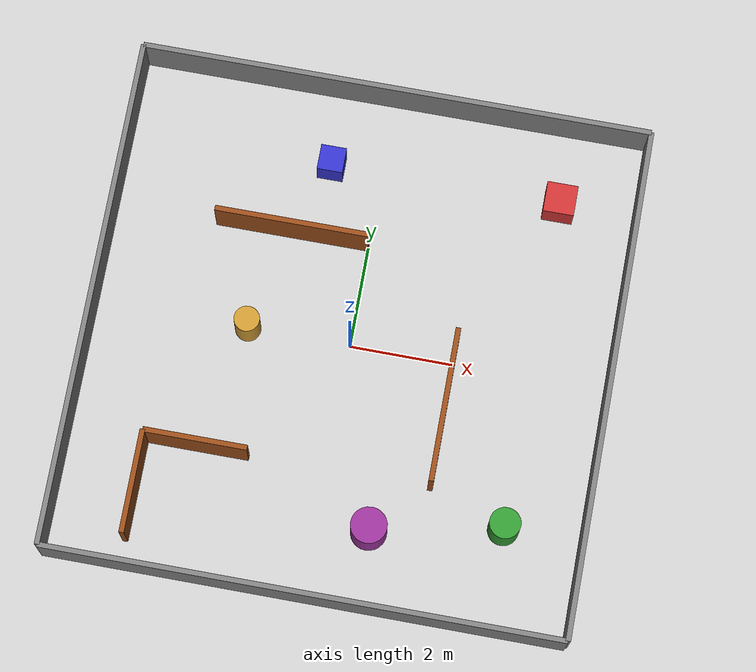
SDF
<?xml version="1.0" ?>
<sdf version="1.8">
  <world name="drobot_world">

    <!-- Physics -->
    <physics name="1ms" type="ignored">
      <max_step_size>0.001</max_step_size>
      <real_time_factor>1.0</real_time_factor>
    </physics>

    <!-- Plugins -->
    <plugin filename="gz-sim-physics-system" name="gz::sim::systems::Physics"/>
    <plugin filename="gz-sim-user-commands-system" name="gz::sim::systems::UserCommands"/>
    <plugin filename="gz-sim-scene-broadcaster-system" name="gz::sim::systems::SceneBroadcaster"/>
    <plugin filename="gz-sim-sensors-system" name="gz::sim::systems::Sensors">
      <render_engine>ogre2</render_engine>
    </plugin>
    <plugin filename="gz-sim-imu-system" name="gz::sim::systems::Imu"/>
    <plugin filename="gz-sim-contact-system" name="gz::sim::systems::Contact"/>

    <!-- Lighting -->
    <light type="directional" name="sun">
      <cast_shadows>true</cast_shadows>
      <pose>0 0 10 0 0 0</pose>
      <diffuse>0.8 0.8 0.8 1</diffuse>
      <specular>0.2 0.2 0.2 1</specular>
      <attenuation>
        <range>1000</range>
        <constant>0.9</constant>
        <linear>0.01</linear>
        <quadratic>0.001</quadratic>
      </attenuation>
      <direction>-0.5 0.1 -0.9</direction>
    </light>

    <!-- Ground Plane -->
    <model name="ground_plane">
      <static>true</static>
      <link name="link">
        <collision name="collision">
          <geometry>
            <plane>
              <normal>0 0 1</normal>
              <size>100 100</size>
            </plane>
          </geometry>
        </collision>
        <visual name="visual">
          <geometry>
            <plane>
              <normal>0 0 1</normal>
              <size>100 100</size>
            </plane>
          </geometry>
          <material>
            <ambient>0.8 0.8 0.8 1</ambient>
            <diffuse>0.8 0.8 0.8 1</diffuse>
            <specular>0.8 0.8 0.8 1</specular>
          </material>
        </visual>
      </link>
    </model>

    <!-- 외벽 (10m x 10m 방) - 확대! -->

    <!-- 북쪽 벽 -->
    <model name="wall_north">
      <static>true</static>
      <pose>0 5 0.5 0 0 0</pose>
      <link name="link">
        <collision name="collision">
          <geometry><box><size>10 0.1 1.0</size></box></geometry>
        </collision>
        <visual name="visual">
          <geometry><box><size>10 0.1 1.0</size></box></geometry>
          <material>
            <ambient>0.5 0.5 0.5 1</ambient>
            <diffuse>0.5 0.5 0.5 1</diffuse>
          </material>
        </visual>
      </link>
    </model>

    <!-- 남쪽 벽 -->
    <model name="wall_south">
      <static>true</static>
      <pose>0 -5 0.5 0 0 0</pose>
      <link name="link">
        <collision name="collision">
          <geometry><box><size>10 0.1 1.0</size></box></geometry>
        </collision>
        <visual name="visual">
          <geometry><box><size>10 0.1 1.0</size></box></geometry>
          <material>
            <ambient>0.5 0.5 0.5 1</ambient>
            <diffuse>0.5 0.5 0.5 1</diffuse>
          </material>
        </visual>
      </link>
    </model>

    <!-- 동쪽 벽 -->
    <model name="wall_east">
      <static>true</static>
      <pose>5 0 0.5 0 0 0</pose>
      <link name="link">
        <collision name="collision">
          <geometry><box><size>0.1 10 1.0</size></box></geometry>
        </collision>
        <visual name="visual">
          <geometry><box><size>0.1 10 1.0</size></box></geometry>
          <material>
            <ambient>0.5 0.5 0.5 1</ambient>
            <diffuse>0.5 0.5 0.5 1</diffuse>
          </material>
        </visual>
      </link>
    </model>

    <!-- 서쪽 벽 -->
    <model name="wall_west">
      <static>true</static>
      <pose>-5 0 0.5 0 0 0</pose>
      <link name="link">
        <collision name="collision">
          <geometry><box><size>0.1 10 1.0</size></box></geometry>
        </collision>
        <visual name="visual">
          <geometry><box><size>0.1 10 1.0</size></box></geometry>
          <material>
            <ambient>0.5 0.5 0.5 1</ambient>
            <diffuse>0.5 0.5 0.5 1</diffuse>
          </material>
        </visual>
      </link>
    </model>

    <!-- 내부 벽 (넓은 통로 확보) -->

    <!-- 내부 벽 1: 수평 (위쪽) -->
    <model name="inner_wall_1">
      <static>true</static>
      <pose>-1.5 2 0.5 0 0 0</pose>
      <link name="link">
        <collision name="collision">
          <geometry><box><size>3 0.1 1.0</size></box></geometry>
        </collision>
        <visual name="visual">
          <geometry><box><size>3 0.1 1.0</size></box></geometry>
          <material>
            <ambient>0.6 0.3 0.1 1</ambient>
            <diffuse>0.6 0.3 0.1 1</diffuse>
          </material>
        </visual>
      </link>
    </model>

    <!-- 내부 벽 2: 수직 (오른쪽) -->
    <model name="inner_wall_2">
      <static>true</static>
      <pose>2 -1 0.5 0 0 0</pose>
      <link name="link">
        <collision name="collision">
          <geometry><box><size>0.1 3 1.0</size></box></geometry>
        </collision>
        <visual name="visual">
          <geometry><box><size>0.1 3 1.0</size></box></geometry>
          <material>
            <ambient>0.6 0.3 0.1 1</ambient>
            <diffuse>0.6 0.3 0.1 1</diffuse>
          </material>
        </visual>
      </link>
    </model>

    <!-- 내부 벽 3: L자 (왼쪽 아래) -->
    <model name="inner_wall_3">
      <static>true</static>
      <pose>-2.5 -2.5 0.5 0 0 0</pose>
      <link name="link">
        <collision name="collision">
          <geometry><box><size>2 0.1 1.0</size></box></geometry>
        </collision>
        <visual name="visual">
          <geometry><box><size>2 0.1 1.0</size></box></geometry>
          <material>
            <ambient>0.6 0.3 0.1 1</ambient>
            <diffuse>0.6 0.3 0.1 1</diffuse>
          </material>
        </visual>
      </link>
    </model>

    <!-- 내부 벽 4: L자 연결 -->
    <model name="inner_wall_4">
      <static>true</static>
      <pose>-3.5 -3.5 0.5 0 0 0</pose>
      <link name="link">
        <collision name="collision">
          <geometry><box><size>0.1 2 1.0</size></box></geometry>
        </collision>
        <visual name="visual">
          <geometry><box><size>0.1 2 1.0</size></box></geometry>
          <material>
            <ambient>0.6 0.3 0.1 1</ambient>
            <diffuse>0.6 0.3 0.1 1</diffuse>
          </material>
        </visual>
      </link>
    </model>

    <!-- 장애물 (넓게 배치) -->

    <!-- 박스 장애물 1 -->
    <model name="box_1">
      <static>true</static>
      <pose>3.5 3.5 0.3 0 0 0</pose>
      <link name="link">
        <collision name="collision">
          <geometry><box><size>0.6 0.6 0.6</size></box></geometry>
        </collision>
        <visual name="visual">
          <geometry><box><size>0.6 0.6 0.6</size></box></geometry>
          <material>
            <ambient>0.8 0.2 0.2 1</ambient>
            <diffuse>0.8 0.2 0.2 1</diffuse>
          </material>
        </visual>
      </link>
    </model>

    <!-- 박스 장애물 2 -->
    <model name="box_2">
      <static>true</static>
      <pose>-1 3.5 0.3 0 0 0</pose>
      <link name="link">
        <collision name="collision">
          <geometry><box><size>0.5 0.5 0.6</size></box></geometry>
        </collision>
        <visual name="visual">
          <geometry><box><size>0.5 0.5 0.6</size></box></geometry>
          <material>
            <ambient>0.2 0.2 0.8 1</ambient>
            <diffuse>0.2 0.2 0.8 1</diffuse>
          </material>
        </visual>
      </link>
    </model>

    <!-- 실린더 장애물 1 -->
    <model name="cylinder_1">
      <static>true</static>
      <pose>3.5 -3 0.4 0 0 0</pose>
      <link name="link">
        <collision name="collision">
          <geometry>
            <cylinder>
              <radius>0.3</radius>
              <length>0.8</length>
            </cylinder>
          </geometry>
        </collision>
        <visual name="visual">
          <geometry>
            <cylinder>
              <radius>0.3</radius>
              <length>0.8</length>
            </cylinder>
          </geometry>
          <material>
            <ambient>0.2 0.6 0.2 1</ambient>
            <diffuse>0.2 0.6 0.2 1</diffuse>
          </material>
        </visual>
      </link>
    </model>

    <!-- 실린더 장애물 2 -->
    <model name="cylinder_2">
      <static>true</static>
      <pose>-2 0 0.4 0 0 0</pose>
      <link name="link">
        <collision name="collision">
          <geometry>
            <cylinder>
              <radius>0.25</radius>
              <length>0.8</length>
            </cylinder>
          </geometry>
        </collision>
        <visual name="visual">
          <geometry>
            <cylinder>
              <radius>0.25</radius>
              <length>0.8</length>
            </cylinder>
          </geometry>
          <material>
            <ambient>0.8 0.6 0.2 1</ambient>
            <diffuse>0.8 0.6 0.2 1</diffuse>
          </material>
        </visual>
      </link>
    </model>

    <!-- 실린더 장애물 3 -->
    <model name="cylinder_3">
      <static>true</static>
      <pose>1 -3.5 0.4 0 0 0</pose>
      <link name="link">
        <collision name="collision">
          <geometry>
            <cylinder>
              <radius>0.35</radius>
              <length>0.8</length>
            </cylinder>
          </geometry>
        </collision>
        <visual name="visual">
          <geometry>
            <cylinder>
              <radius>0.35</radius>
              <length>0.8</length>
            </cylinder>
          </geometry>
          <material>
            <ambient>0.6 0.2 0.6 1</ambient>
            <diffuse>0.6 0.2 0.6 1</diffuse>
          </material>
        </visual>
      </link>
    </model>

  </world>
</sdf>
